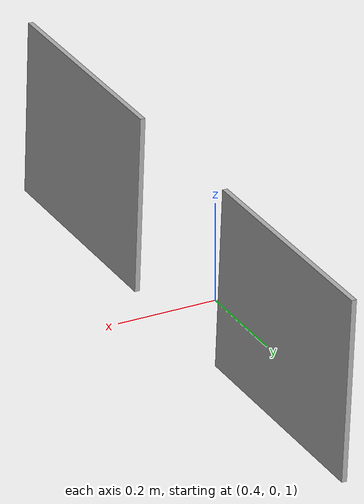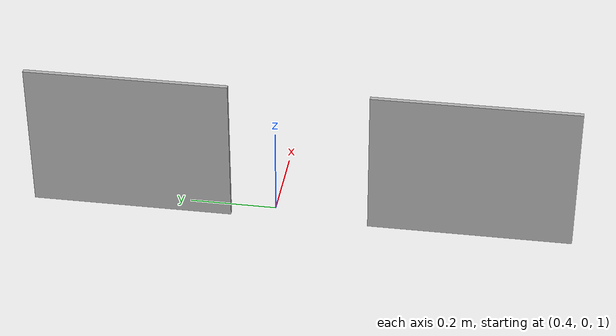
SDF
<sdf version='1.7'>
  <world name='default'>
    <light name='sun' type='directional'>
      <cast_shadows>1</cast_shadows>
      <pose>0 0 10 0 -0 0</pose>
      <diffuse>0.8 0.8 0.8 1</diffuse>
      <specular>0.2 0.2 0.2 1</specular>
      <attenuation>
        <range>1000</range>
        <constant>0.9</constant>
        <linear>0.01</linear>
        <quadratic>0.001</quadratic>
      </attenuation>
      <direction>-0.5 0.1 -0.9</direction>
      <spot>
        <inner_angle>0</inner_angle>
        <outer_angle>0</outer_angle>
        <falloff>0</falloff>
      </spot>
    </light>
    <physics name='default_physics' default='0' type='ode'>
      <real_time_update_rate>1000</real_time_update_rate>
      <max_step_size>0.001</max_step_size>
      <real_time_factor>1</real_time_factor>
      <ode>
        <solver>
          <type>quick</type>
          <iters>150</iters>
          <precon_iters>0</precon_iters>
          <sor>1.4</sor>
          <use_dynamic_moi_rescaling>1</use_dynamic_moi_rescaling>
        </solver>
        <constraints>
          <cfm>1e-05</cfm>
          <erp>0.2</erp>
          <contact_max_correcting_vel>2000</contact_max_correcting_vel>
          <contact_surface_layer>0.01</contact_surface_layer>
        </constraints>
      </ode>
    </physics>
    <scene>
      <ambient>0.4 0.4 0.4 1</ambient>
      <background>0.7 0.7 0.7 1</background>
      <shadows>1</shadows>
    </scene>
    <gui fullscreen='0'>
      <camera name='user_camera'>
        <pose>7.63514 14.7605 8.16182 -0 0.581798 -2.15838</pose>
        <view_controller>orbit</view_controller>
        <projection_type>perspective</projection_type>
      </camera>
    </gui>
    <gravity>0 0 -9.8</gravity>
    <magnetic_field>6e-06 2.3e-05 -4.2e-05</magnetic_field>
    <atmosphere type='adiabatic'/>
    <audio>
      <device>default</device>
    </audio>
    <wind/>
    <spherical_coordinates>
      <surface_model>EARTH_WGS84</surface_model>
      <latitude_deg>0</latitude_deg>
      <longitude_deg>0</longitude_deg>
      <elevation>0</elevation>
      <heading_deg>0</heading_deg>
    </spherical_coordinates>
    <model name='fnr2022_map'>
      <static>1</static>
      <link name='link'>
        <collision name='collision'>
          <geometry>
            <plane>
              <normal>0 0 1</normal>
              <size>29.9 22</size>
            </plane>
          </geometry>
          <surface>
            <friction>
              <ode>
                <mu>100</mu>
                <mu2>50</mu2>
              </ode>
              <torsional>
                <ode/>
              </torsional>
            </friction>
            <contact>
              <ode/>
            </contact>
            <bounce/>
          </surface>
          <max_contacts>10</max_contacts>
        </collision>
        <visual name='visual'>
          <cast_shadows>0</cast_shadows>
          <geometry>
            <plane>
              <normal>0 0 1</normal>
              <size>29.9 22</size>
            </plane>
          </geometry>
          <material>
            <script>
              <uri>model://FNR2022_map/materials/scripts</uri>
              <uri>model://FNR2022_map/materials/textures</uri>
              <name>FNR2022/Image</name>
            </script>
          </material>
        </visual>
        <self_collide>0</self_collide>
        <enable_wind>0</enable_wind>
        <kinematic>0</kinematic>
      </link>
      <pose>-0.033622 1.43805 0 0 -0 0</pose>
    </model>
    <model name='semaphore_monitor'>
      <static>1</static>
      <pose>0.487282 -0.044776 0.113553 0.037859 0.001051 -1.57185</pose>
      <link name='lcd1'>
        <pose>-0.4 0 1 1.5708 0 3.1415</pose>
        <collision name='collision1'>
          <geometry>
            <box>
              <size>0.4758 0.35685 0.01</size>
            </box>
          </geometry>
          <max_contacts>10</max_contacts>
          <surface>
            <bounce/>
            <friction>
              <ode/>
            </friction>
            <contact>
              <ode/>
            </contact>
          </surface>
        </collision>
        <visual name='visual1'>
          <geometry>
            <box>
              <size>0.4758 0.35685 0.01</size>
            </box>
          </geometry>
          <material>
            <ambient>0.69 0.69 0.69 1</ambient>
            <diffuse>0.69 0.69 0.69 1</diffuse>
            <specular>0.1 0.1 0.1 1</specular>
            <emissive>0 0 0 0</emissive>
          </material>
          <plugin name='display_video_controller1' filename='libgazebo_ros_video.so'>
            <robotNamespace>monitor1</robotNamespace>
            <topicName>image1</topicName>
            <height>120</height>
            <width>160</width>
          </plugin>
        </visual>
        <velocity_decay>
          <linear>0</linear>
          <angular>0</angular>
        </velocity_decay>
        <self_collide>0</self_collide>
        <kinematic>0</kinematic>
        <gravity>1</gravity>
      </link>
      <link name='lcd2'>
        <pose>0.4 0 1 1.5708 0 0</pose>
        <collision name='collision2'>
          <geometry>
            <box>
              <size>0.4758 0.35685 0.01</size>
            </box>
          </geometry>
          <max_contacts>10</max_contacts>
          <surface>
            <bounce/>
            <friction>
              <ode/>
            </friction>
            <contact>
              <ode/>
            </contact>
          </surface>
        </collision>
        <visual name='visual2'>
          <geometry>
            <box>
              <size>0.4758 0.35685 0.01</size>
            </box>
          </geometry>
          <material>
            <ambient>0.69 0.69 0.69 1</ambient>
            <diffuse>0.69 0.69 0.69 1</diffuse>
            <specular>0.1 0.1 0.1 1</specular>
            <emissive>0 0 0 0</emissive>
          </material>
          <plugin name='display_video_controller2' filename='libgazebo_ros_video.so'>
            <robotNamespace>monitor2</robotNamespace>
            <topicName>image2</topicName>
            <height>120</height>
            <width>160</width>
          </plugin>
        </visual>
        <velocity_decay>
          <linear>0</linear>
          <angular>0</angular>
        </velocity_decay>
        <self_collide>0</self_collide>
        <kinematic>0</kinematic>
        <gravity>1</gravity>
      </link>
    </model>
  </world>
</sdf>
